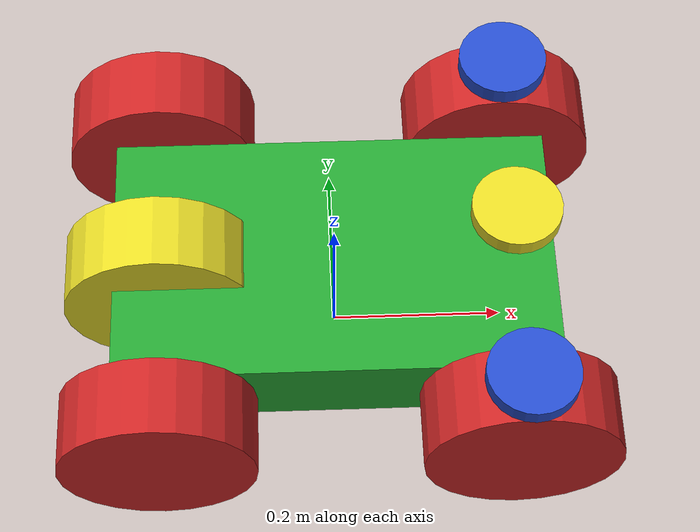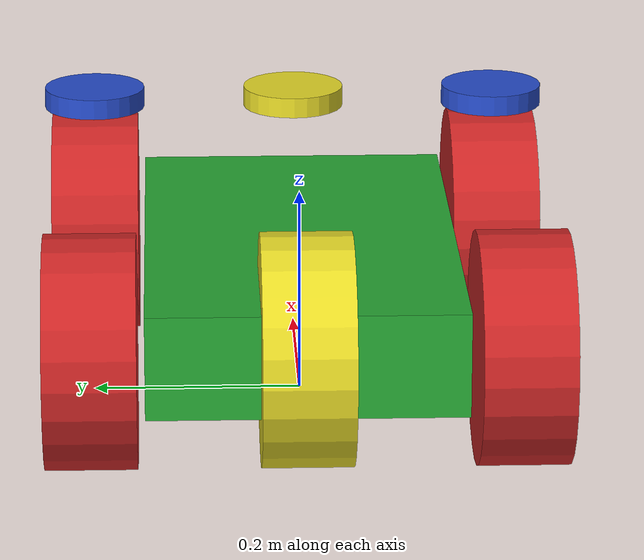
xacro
<?xml version="1.0"?>
<robot name="atlascar2" xmlns:xacro="http://www.ros.org/wiki/xacro">
<!--
Robot model taken from http://wiki.ros.org/pr2_mechanism/Tutorials/SImple%20URDF-Controller%20Example
-->
  <xacro:include filename="wheel.urdf.xacro"/>

  <xacro:property name="deg_to_rad" value="0.01745329251994329577"/>

    <xacro:property name="length" value="0.5" />
  <xacro:property name="width" value="0.3" />
  <xacro:property name="wheel_radius" value="0.11" /> <!-- Link 1 -->
  <xacro:property name="thickness" value="0.086" /> <!-- Link 2 -->
  <xacro:property name="axel_offset" value="0.05" /> <!-- Space btw top of beam and the each joint -->
  <xacro:property name="steer_offset" value="0.02" /> <!-- Link 1 -->

  <!-- Links: inertial,visual,collision -->
  <link name="base_link">
    <inertial>
      <!-- origin is relative -->
      <origin xyz="0 0 0" rpy="0 0 0"/>
      <mass value="2"/>
      <inertia ixx="2" ixy="0" ixz="0"
               iyy="2" iyz="0"
               izz="2"/>
    </inertial>
    <visual>
      <geometry>
        <box size="${length} ${width} 0.1"/>
      </geometry>
    </visual>
    <collision>
      <!-- origin is relative -->
      <origin xyz="0 0 0"/>
      <geometry>
        <box size="${length} ${width} 0.1"/>
      </geometry>
    </collision>
  </link>

  <link name="base_footprint">
    <visual>
      <geometry>
        <sphere radius="0.01"/>
      </geometry>
    </visual>
    <collision>
      <origin xyz="0 0 0"/>
      <geometry>
        <sphere radius="0.00000001"/>
      </geometry>
    </collision>
  </link>
  <joint name="base_footprint_joint" type="fixed">
    <origin xyz="0 0 ${wheel_radius}" rpy="0 0 0"/>
    <child link="base_link"/>
    <parent link="base_footprint"/>
  </joint>

  <!-- joints for ackermann_steering_controller -->
  <xacro:front_steer name="front" parent="base" radius="${wheel_radius}" thickness="${thickness}"
      length="${length}" width="${width}" axel_offset="${axel_offset}" steer_height="${wheel_radius+steer_offset}">
    <origin xyz="${length/2-axel_offset} 0 0" rpy="${-90 * deg_to_rad} 0 0"/>
  </xacro:front_steer>
  <xacro:rear_wheel name="rear" parent="base" radius="${wheel_radius}" thickness="${thickness}">
    <origin xyz="${-length/2+axel_offset} 0 0" rpy="${-90 * deg_to_rad} 0 0"/>
  </xacro:rear_wheel>

  <!-- Wheels -->
  <xacro:front_wheel_lr name="front_right" parent="base" radius="${wheel_radius}" thickness="${thickness}"
      length="${length}" width="${width}" axel_offset="${axel_offset}" right_left="1" steer_height="${wheel_radius+steer_offset}">
    <origin xyz="${length/2-axel_offset} ${width/2+axel_offset} 0" rpy="${-90 * deg_to_rad} 0 0"/>
  </xacro:front_wheel_lr>
  <xacro:front_wheel_lr name="front_left" parent="base" radius="${wheel_radius}" thickness="${thickness}"
      length="${length}" width="${width}" axel_offset="${axel_offset}" right_left="-1" steer_height="${wheel_radius+steer_offset}">
    <origin xyz="${length/2-axel_offset} ${-width/2-axel_offset} 0" rpy="${-90 * deg_to_rad} 0 0"/>
  </xacro:front_wheel_lr>
  <xacro:rear_wheel_lr name="rear_right" parent="base" radius="${wheel_radius}" thickness="${thickness}">
    <origin xyz="${-length/2+axel_offset} ${width/2+axel_offset} 0" rpy="${-90 * deg_to_rad} 0 0"/>
  </xacro:rear_wheel_lr>
  <xacro:rear_wheel_lr name="rear_left" parent="base" radius="${wheel_radius}" thickness="${thickness}">
    <origin xyz="${-length/2+axel_offset} ${-width/2-axel_offset} 0" rpy="${-90 * deg_to_rad} 0 0"/>
  </xacro:rear_wheel_lr>

    <!-- Gazebo plugin for ROS Control -->
  <gazebo>
    <plugin name="gazebo_ros_control" filename="libgazebo_ros_control.so">
      <robotSimType>steer_bot_hardware_gazebo/SteerBotHardwareGazebo</robotSimType>
    </plugin>
  </gazebo>

  <!-- Colour -->
  <gazebo reference="base_link">
    <material>Gazebo/Green</material>
  </gazebo>

  <gazebo reference="base_footprint">
    <material>Gazebo/Purple</material>
  </gazebo>

</robot>

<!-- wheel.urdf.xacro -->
<robot xmlns:xacro="http://www.ros.org/wiki/xacro">
  <xacro:property name="steer_radius" value="0.05" /> <!-- Link 1 -->
  <xacro:property name="steer_thickness" value="0.02" /> <!-- Link 1 -->
  <xacro:property name="steer_effort"   value="15.0"/>
  <xacro:property name="steer_velocity" value="5.0"/>
  <xacro:property name="inertia" value="0.002"/>
  <xacro:property name="inertia_yy" value="0.002"/>
  <xacro:property name="damping" value="0.0"/>
  <xacro:property name="friction" value="0.0" />

  <xacro:macro name="front_steer" params="name parent radius thickness length width axel_offset steer_height *origin">
    <link name="${name}_steer_link">
      <inertial>
        <origin xyz="0 0 0" rpy="0 0 0"/>
        <mass value="0.5"/>
        <inertia ixx="${inertia}" ixy="0" ixz="0" iyy="${inertia_yy}" iyz="0" izz="${inertia}"/>
      </inertial>
      <visual>
        <origin xyz="0 0 0" rpy="0 0 0"/>
        <geometry>
          <cylinder radius="${steer_radius}" length="${steer_thickness}"/>
        </geometry>
      </visual>
      <collision>
        <origin xyz="0 0 0" rpy="0 0 0"/>
        <geometry>
          <cylinder radius="${steer_radius}" length="${steer_thickness}"/>
        </geometry>
      </collision>
    </link>

    <joint name="${name}_steer_joint" type="revolute">
      <parent link="${parent}_link"/>
      <child link="${name}_steer_link"/>
      <origin xyz="${length/2-axel_offset} 0 ${steer_height}" rpy="0 0 0"/>
      <axis xyz="0 0 1"/>
      <limit effort="${steer_effort}"
             lower="${-180.0 * deg_to_rad}" upper="${180.0 * deg_to_rad}"
             velocity="${steer_velocity}"/>
      <dynamics damping="${damping}" friction="${friction}"/>
     </joint>

           <!-- Transmission is important to link the joints and the controller -->
    <transmission name="${name}_steer_joint_trans">
      <type>transmission_interface/SimpleTransmission</type>
      <actuator name="${name}_steer_joint_motor"/>
      <joint name="${name}_steer_joint">
        <hardwareInterface>hardware_interface/PositionJointInterface</hardwareInterface>
        <dynamics damping="${damping}" friction="0.0"/>
      </joint>
      <mechanicalReduction>1</mechanicalReduction>
      <motorTorqueConstant>1</motorTorqueConstant>
    </transmission>
    <gazebo reference="${name}_steer_link">
      <material>Gazebo/Yellow</material>
    </gazebo>
  </xacro:macro>

  <xacro:macro name="front_wheel_lr" params="name parent radius thickness length width axel_offset right_left steer_height *origin">
    <link name="${name}_steer_link">
      <inertial>
        <origin xyz="0 0 0" rpy="0 0 0"/>
        <mass value="0.5"/>
        <inertia ixx="${inertia}" ixy="0" ixz="0" iyy="${inertia_yy}" iyz="0" izz="${inertia}"/>
      </inertial>
      <visual>
        <origin xyz="0 0 0" rpy="0 0 0"/>
        <geometry>
          <cylinder radius="${steer_radius}" length="${steer_thickness}"/>
        </geometry>
      </visual>
      <collision>
        <origin xyz="0 0 0" rpy="0 0 0"/>
        <geometry>
          <cylinder radius="${steer_radius}" length="${steer_thickness}"/>
        </geometry>
      </collision>
    </link>

    <joint name="${name}_steer_joint" type="revolute">
      <parent link="${parent}_link"/>
      <child link="${name}_steer_link"/>
      <origin xyz="${length/2-axel_offset} ${right_left*(width/2+axel_offset)} ${steer_height}" rpy="0 0 0"/>
      <!--xacro:insert_block name="origin"/-->
      <axis xyz="0 0 1"/>
      <dynamics damping="${damping}" friction="${friction}"/>
      <limit effort="${steer_effort}"
             lower="${-180.0 * deg_to_rad}" upper="${180.0 * deg_to_rad}"
             velocity="${steer_velocity}"/>
     </joint>

    <link name="${name}_wheel_link">
      <inertial>
        <origin xyz="0 0 0" rpy="0 0 0"/>
        <mass value="0.5"/>
        <inertia ixx="${inertia}" ixy="0" ixz="0" iyy="${inertia_yy}" iyz="0" izz="${inertia}"/>
      </inertial>
      <visual>
        <origin xyz="0 0 0" rpy="0 0 0"/>
        <geometry>
          <cylinder radius="${wheel_radius}" length="${thickness}"/>
        </geometry>
      </visual>
      <collision>
        <origin xyz="0 0 0" rpy="0 0 0"/>
        <geometry>
          <cylinder radius="${wheel_radius}" length="${thickness}"/>
        </geometry>
      </collision>
    </link>

    <joint name="${name}_wheel_joint" type="continuous">
      <parent link="${name}_steer_link"/>
      <child link="${name}_wheel_link"/>
      <origin xyz="0 0 ${-steer_height}" rpy="${-90 * deg_to_rad} 0 0"/>-->
      <axis xyz="0 0 1"/>
      <dynamics damping="${damping}" friction="${friction}"/>
    </joint>

    <!-- Transmission is important to link the joints and the controller -->
    <transmission name="${name}_steer_joint_trans">
      <type>transmission_interface/SimpleTransmission</type>
      <actuator name="${name}_steer_joint_motor"/>
      <joint name="${name}_steer_joint">
        <hardwareInterface>hardware_interface/EffortJointInterface</hardwareInterface>
        <dynamics damping="${damping}" friction="${friction}"/>
      </joint>
      <mechanicalReduction>1</mechanicalReduction>
      <motorTorqueConstant>1</motorTorqueConstant>
    </transmission>
    <transmission name="${name}_wheel_joint_trans" >
      <type>transmission_interface/SimpleTransmission</type>
      <actuator name="${name}_wheel_joint_motor"/>
      <joint name="${name}_wheel_joint">
        <hardwareInterface>hardware_interface/EffortJointInterface</hardwareInterface>
        <dynamics damping="${damping}" friction="${friction}"/>
      </joint>
      <mechanicalReduction>1</mechanicalReduction>
      <motorTorqueConstant>1</motorTorqueConstant>
    </transmission>

    <gazebo reference="${name}_steer_link">
      <material>Gazebo/Blue</material>
    </gazebo>
    <gazebo reference="${name}_wheel_link">
      <material>Gazebo/Red</material>
    </gazebo>
  </xacro:macro>

  <xacro:macro name="rear_wheel" params="name parent radius thickness *origin">
    <link name="${name}_wheel_link">
      <inertial>
        <origin xyz="0 0 0" rpy="0 0 0"/>
        <mass value="0.5"/>
        <inertia ixx="${inertia}" ixy="0" ixz="0" iyy="${inertia_yy}" iyz="0" izz="${inertia}"/>
      </inertial>
      <visual>
        <origin xyz="0 0 0" rpy="0 0 0"/>
        <geometry>
          <cylinder radius="${wheel_radius}" length="${thickness}"/>
        </geometry>
      </visual>
      <collision>
        <origin xyz="0 0 0" rpy="0 0 0"/>
        <geometry>
          <cylinder radius="${wheel_radius}" length="${thickness}"/>
        </geometry>
      </collision>
    </link>

    <joint name="${name}_wheel_joint" type="continuous">
      <parent link="${parent}_link"/>
      <child link="${name}_wheel_link"/>
      <xacro:insert_block name="origin"/>
      <axis xyz="0 0 1"/>
      <dynamics damping="${damping}" friction="${friction}"/>
    </joint>

    <!-- Transmission is important to link the joints and the controller -->
    <transmission name="${name}_wheel_joint_trans" >
      <type>transmission_interface/SimpleTransmission</type>
      <actuator name="${name}_wheel_joint_motor"/>
      <joint name="${name}_wheel_joint">
          <hardwareInterface>hardware_interface/VelocityJointInterface</hardwareInterface>
          <dynamics damping="${damping}" friction="${friction}"/>
      </joint>
      <mechanicalReduction>1</mechanicalReduction>
      <motorTorqueConstant>1</motorTorqueConstant>
    </transmission>
    <gazebo reference="${name}_wheel_link">
      <material>Gazebo/Yellow</material>
    </gazebo>
  </xacro:macro>

  <xacro:macro name="rear_wheel_lr" params="name parent radius thickness *origin">
    <link name="${name}_wheel_link">
      <inertial>
        <origin xyz="0 0 0" rpy="0 0 0"/>
        <mass value="1"/>
        <inertia ixx="${inertia}" ixy="0" ixz="0" iyy="${inertia_yy}" iyz="0" izz="${inertia}"/>
      </inertial>
      <visual>
        <origin xyz="0 0 0" rpy="0 0 0"/>
        <geometry>
          <cylinder radius="${wheel_radius}" length="${thickness}"/>
        </geometry>
      </visual>
      <collision>
        <origin xyz="0 0 0" rpy="0 0 0"/>
        <geometry>
          <cylinder radius="${wheel_radius}" length="${thickness}"/>
        </geometry>
      </collision>
    </link>

    <joint name="${name}_wheel_joint" type="continuous">
      <parent link="${parent}_link"/>
      <child link="${name}_wheel_link"/>
      <xacro:insert_block name="origin"/>
      <axis xyz="0 0 1"/>
      <dynamics damping="${damping}" friction="${friction}"/>
    </joint>

    <!-- Transmission is important to link the joints and the controller -->
    <transmission name="${name}_wheel_joint_trans" >
      <type>transmission_interface/SimpleTransmission</type>
      <actuator name="${name}_wheel_joint_motor"/>
      <joint name="${name}_wheel_joint">
          <hardwareInterface>hardware_interface/EffortJointInterface</hardwareInterface>
          <dynamics damping="${damping}" friction="${friction}"/>
      </joint>
      <mechanicalReduction>1</mechanicalReduction>
      <motorTorqueConstant>1</motorTorqueConstant>
    </transmission>

    <gazebo reference="${name}_wheel_link">
      <material>Gazebo/Red</material>
    </gazebo>
  </xacro:macro>
</robot>
